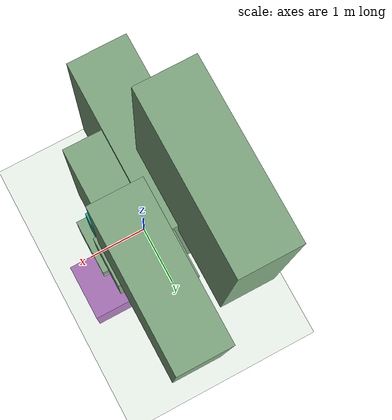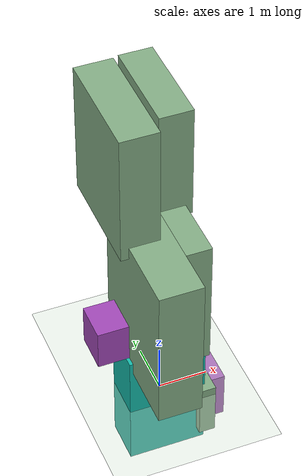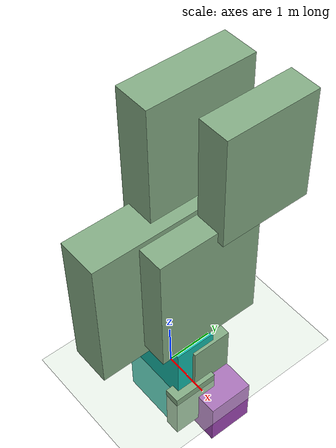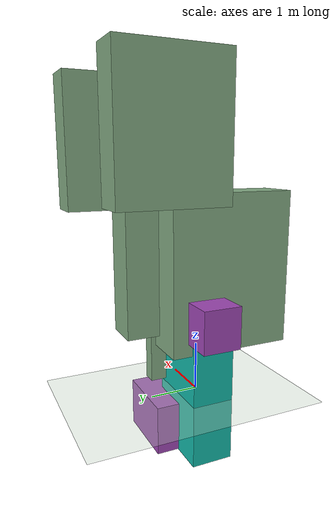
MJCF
<mujoco model="Two Arm Rower">
    <compiler angle="degree" coordinate="local" inertiafromgeom="true"/>
    <option integrator="RK4" timestep="0.01"/>

    <default>
        <joint armature="1" damping="1" limited="true"/>
        <geom conaffinity="0" condim="3" density="5.0" friction="1 0.5 0.5" margin="0.01" rgba="0.8 0.6 0.4 1"/>
    </default>
    <asset>
        <texture builtin="gradient" height="100" rgb1="1 1 1" rgb2="0 0 0" type="skybox" width="100"/>
        <texture builtin="flat" height="1278" mark="cross" markrgb="1 1 1" name="texgeom" random="0.01" rgb1="0.8 0.6 0.4" rgb2="0.8 0.6 0.4" type="cube" width="127"/>
        <texture builtin="checker" height="100" name="texplane" rgb1="0 0 0" rgb2="0.8 0.8 0.8" type="2d" width="100"/>
        <material name="MatPlane" reflectance="0.5" shininess="1" specular="1" texrepeat="60 60" texture="texplane"/>
        <material name="geom" texture="texgeom" texuniform="true"/>
    </asset>

	<worldbody>
        <light cutoff="100" diffuse="1 1 1" dir="-0 0 -1.3" directional="true" exponent="1" pos="0 0 1.3" specular=".1 .1 .1"/>
        <geom conaffinity="1" condim="3" material="MatPlane" name="floor" pos="0 0 0" rgba="0.8 0.9 0.8 1" size="40 40 40" type="plane"/>

		<body name="seg0" pos="0 0 0">

            <camera name="track" mode="trackcom" pos="0 -10 5.0" xyaxes="1 0 0 0 0 1"/>

			<geom name="seg0_geom" type="box" pos="0 0 0" size="0.7817855 0.436341643 1.3171674"
				euler="0 0 0" rgba = "0.07792833 0.735989749 0.672492564 1"/>

            <joint armature="0" damping="0" limited="false" margin="0.01" name="root" pos="0 0 0" type="free"/>

			<!-- sites that visualize the x-y axis of the ant body, good for debugging -->

			<body name="seg1" pos="-0.746078492 0.13879776 1.736679731">
                <joint name="seg0_to_1" range="-75 75" type="hinge" axis="0 0 1" pos="0.477163136 -0.159047112 -1.0 "/>
                <geom name="seg1_geom" type="box" pos="0 0 0" size="0.595344 0.388579845 0.419512331" euler="0.0008985509 0.00109280727 0.004466458" rgba = "0.632558644 0.284143984 0.720508 1"/>
            </body>

            <body name="seg2" pos="0.781785488 -0.12621116 -0.4193217760000001">
                <joint name="seg0_to_2" range="-75 75" type="hinge" axis="0 1 0" pos="-0.49999997 0.144624248 -0.116638534 "/>
                <geom name="seg2_geom" type="box" pos="0 0 0" size="0.165260255 0.482132822 0.5905807" euler="0.000849346863 0.00307855778 0.0009179028" rgba = "0.51788646 0.6775681 0.522202134 1" />

                <body name="seg3" pos="-0.08037185600000007 0.482152932 1.013563076">
                    <joint name="seg2_to_3" range="-75 75" type="hinge" axis="0 1 0" pos="0.243193358 -0.4999997 -0.917953253 "/>
                    <geom name="seg3_geom" type="box" pos="0 0 0" size="0.145482287 0.424432218 0.5199013" euler="0.000849346863 0.00307855778 0.0009179028" rgba = "0.51788646 0.6775681 0.522202134 1" />
                </body>
            </body>

            <body name="seg4" pos="0.3417406 0.382444382 2.6967352600000005">
                <joint name="seg0_to_4" range="-75 75" type="hinge" axis="0 1 0" pos="-0.218564168 -0.4382396 -1.0 "/>
                <geom name="seg4_geom" type="box" pos="0 0 0" size="0.386039972 1.126239 1.37956786" euler="0.0 0.0 0.0" rgba = "0.51788646 0.6775681 0.522202134 1"/>

                <body name="seg5" pos="0.18776560000000003 1.126239818 2.36765385">
                    <joint name="seg4_to_5" range="-75 75" type="hinge" axis="0 1 0" pos="-0.243194491 -0.500000358 -0.917953134 "/>
                    <geom name="seg5_geom" type="box" pos="0 0 0" size="0.339839548 0.9914531 1.21446419" euler="0.0 0.0 0.0" rgba = "0.5178865 0.677568138 0.5222022 1"/>
                </body>
            </body>

            <body name="seg6" pos="-0.27436924 -0.43634224 2.61815406">
                <joint name="seg0_to_6" range="-75 75" type="hinge" axis="0 1 0" pos="0.17547603 0.500000656 -0.9004083 "/>
                <geom name="seg6_geom" type="box" pos="0 0 0" size="0.4374656 1.27626884 1.5633446" euler="0.0009045518 -0.000434916059 -0.00434324844" rgba = "0.5178865 0.677568138 0.5222022 1"/>

                <body name="seg7" pos="-0.21257019 1.2763118759999998 2.68305289">
                    <joint name="seg6_to_7" range="-75 75" type="hinge" axis="0 1 0" pos="0.243194059 -0.499999762 -0.917953253 "/>
                    <geom name="seg7_geom" type="box" pos="0 0 0" size="0.385110676 1.12352777 1.37624693" euler="0.0009045518 -0.000434916059 -0.00434324844" rgba = "0.5178865 0.677568138 0.5222022 1"/>
                </body>
            </body>

            <body name="seg8" pos="0.643415928 0.43634224 -0.7651751024">
                <joint name="seg0_to_8" range="-75 75" type="hinge" axis="0 0 1" pos="-0.41150412 -0.500000656 -0.01056538 "/>
                <geom name="seg8_geom" type="box" pos="0 0 0" size="0.7438524 0.485510945 0.524159551" euler="0.0 0.0 0.0" rgba = "0.632558644 0.284143984 0.720508 1"/>
            </body>
		</body>
	</worldbody>

	<actuator>
		<motor joint="seg0_to_1" gear="700" ctrllimited="true" ctrlrange="-1.0 1.0"/>
		<motor joint="seg0_to_2" gear="700" ctrllimited="true" ctrlrange="-1.0 1.0"/>
		<motor joint="seg2_to_3" gear="700" ctrllimited="true" ctrlrange="-1.0 1.0"/>
		<motor joint="seg0_to_4" gear="700" ctrllimited="true" ctrlrange="-1.0 1.0"/>
        <motor joint="seg4_to_5" gear="700" ctrllimited="true" ctrlrange="-1.0 1.0"/>
        <motor joint="seg0_to_6" gear="700" ctrllimited="true" ctrlrange="-1.0 1.0"/>
        <motor joint="seg6_to_7" gear="700" ctrllimited="true" ctrlrange="-1.0 1.0"/>
        <motor joint="seg0_to_8" gear="700" ctrllimited="true" ctrlrange="-1.0 1.0"/>
	</actuator>

	<!-- TODO: see if there is a less painful way to do this-->
	<contact>

		<exclude body1="seg0" body2="seg1" />
		<exclude body1="seg0" body2="seg2" />
		<exclude body1="seg0" body2="seg3" />
		<exclude body1="seg0" body2="seg4" />
		<exclude body1="seg0" body2="seg5" />
		<exclude body1="seg0" body2="seg6" />
		<exclude body1="seg0" body2="seg7" />
		<exclude body1="seg0" body2="seg8" />

		<exclude body1="seg1" body2="seg2" />
		<exclude body1="seg1" body2="seg3" />
		<exclude body1="seg1" body2="seg4" />
		<exclude body1="seg1" body2="seg5" />
		<exclude body1="seg1" body2="seg6" />
		<exclude body1="seg1" body2="seg7" />
		<exclude body1="seg1" body2="seg8" />

		<exclude body1="seg2" body2="seg3" />
		<exclude body1="seg2" body2="seg4" />
		<exclude body1="seg2" body2="seg5" />
		<exclude body1="seg2" body2="seg6" />
		<exclude body1="seg2" body2="seg7" />
		<exclude body1="seg2" body2="seg8" />

		<exclude body1="seg3" body2="seg4" />
		<exclude body1="seg3" body2="seg5" />
		<exclude body1="seg3" body2="seg6" />
		<exclude body1="seg3" body2="seg7" />
		<exclude body1="seg3" body2="seg8" />

		<exclude body1="seg4" body2="seg5" />
		<exclude body1="seg4" body2="seg6" />
		<exclude body1="seg4" body2="seg7" />
		<exclude body1="seg4" body2="seg8" />

		<exclude body1="seg5" body2="seg6" />
		<exclude body1="seg5" body2="seg7" />
		<exclude body1="seg5" body2="seg8" />

		<exclude body1="seg6" body2="seg7" />
		<exclude body1="seg6" body2="seg8" />

		<exclude body1="seg7" body2="seg8" />
	</contact>
</mujoco>
